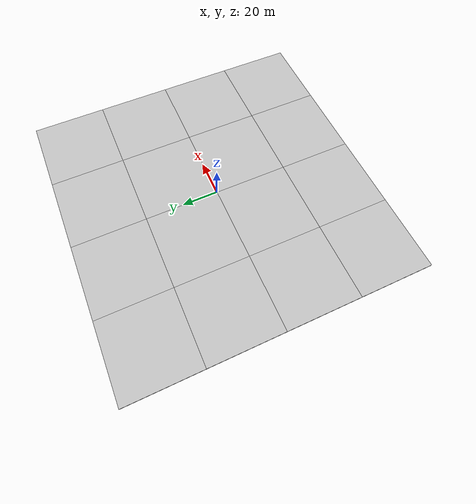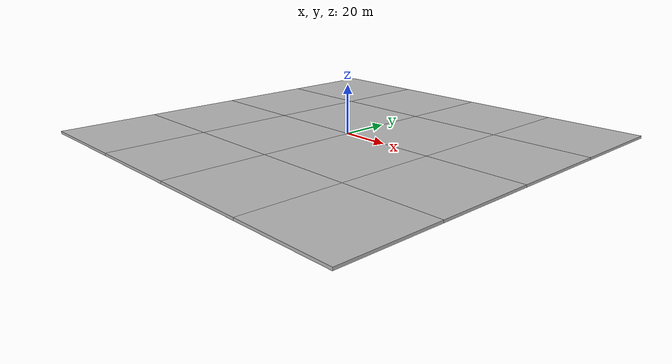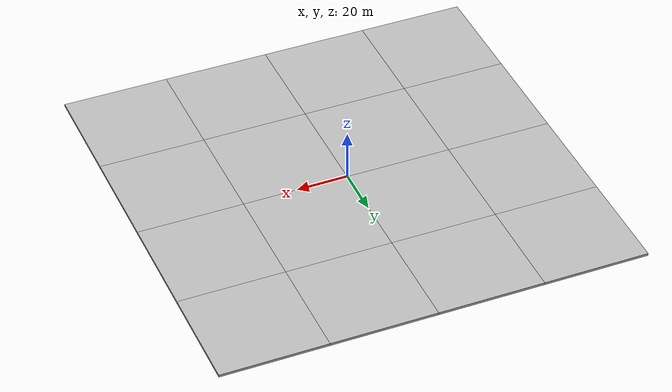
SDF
<sdf version="1.7">
 <world name="default">
  <model name="ground_plane">
   <static>1</static>
   <link name="link">
    <collision name="collision">
     <geometry><plane><normal>0 0 1</normal><size>5000 5000</size></plane></geometry>
     <surface><friction><ode><mu>1</mu><mu2>1</mu2></ode></friction></surface>
    </collision>
   </link>
  </model>
  <model name="map_satellite_29.72055_-95.40016_150_150_0">
   <static>1</static>
   <link name="link">
    <collision name="collision">
     <pose>0 0 -0.5 0 -0 0</pose>
     <geometry><box><size>165.955 165.955 1</size></box></geometry>
    </collision>
    <visual name="visual0_0">
     <pose>-62.2331 62.2331 -0.5 0 -0 1.5708</pose>
     <geometry><box><size>41.4888 41.4888 1</size></box></geometry>
     <material>
      <script>
       <uri>model://map_satellite_29.72055_-95.40016_150_150/materials/scripts</uri>
       <uri>model://map_satellite_29.72055_-95.40016_150_150/materials/textures</uri>
       <name>map_satellite_29.72055_-95.40016_150_150/0_0</name>
      </script>
     </material>
    </visual>
    <visual name="visual0_1">
     <pose>-20.7444 62.2331 -0.5 0 -0 1.5708</pose>
     <geometry><box><size>41.4888 41.4888 1</size></box></geometry>
     <material>
      <script>
       <uri>model://map_satellite_29.72055_-95.40016_150_150/materials/scripts</uri>
       <uri>model://map_satellite_29.72055_-95.40016_150_150/materials/textures</uri>
       <name>map_satellite_29.72055_-95.40016_150_150/0_1</name>
      </script>
     </material>
    </visual>
    <visual name="visual0_2">
     <pose>20.7444 62.2331 -0.5 0 -0 1.5708</pose>
     <geometry><box><size>41.4888 41.4888 1</size></box></geometry>
     <material>
      <script>
       <uri>model://map_satellite_29.72055_-95.40016_150_150/materials/scripts</uri>
       <uri>model://map_satellite_29.72055_-95.40016_150_150/materials/textures</uri>
       <name>map_satellite_29.72055_-95.40016_150_150/0_2</name>
      </script>
     </material>
    </visual>
    <visual name="visual0_3">
     <pose>62.2331 62.2331 -0.5 0 -0 1.5708</pose>
     <geometry><box><size>41.4888 41.4888 1</size></box></geometry>
     <material>
      <script>
       <uri>model://map_satellite_29.72055_-95.40016_150_150/materials/scripts</uri>
       <uri>model://map_satellite_29.72055_-95.40016_150_150/materials/textures</uri>
       <name>map_satellite_29.72055_-95.40016_150_150/0_3</name>
      </script>
     </material>
    </visual>
    <visual name="visual1_0">
     <pose>-62.2331 20.7444 -0.5 0 -0 1.5708</pose>
     <geometry><box><size>41.4888 41.4888 1</size></box></geometry>
     <material>
      <script>
       <uri>model://map_satellite_29.72055_-95.40016_150_150/materials/scripts</uri>
       <uri>model://map_satellite_29.72055_-95.40016_150_150/materials/textures</uri>
       <name>map_satellite_29.72055_-95.40016_150_150/1_0</name>
      </script>
     </material>
    </visual>
    <visual name="visual1_1">
     <pose>-20.7444 20.7444 -0.5 0 -0 1.5708</pose>
     <geometry><box><size>41.4888 41.4888 1</size></box></geometry>
     <material>
      <script>
       <uri>model://map_satellite_29.72055_-95.40016_150_150/materials/scripts</uri>
       <uri>model://map_satellite_29.72055_-95.40016_150_150/materials/textures</uri>
       <name>map_satellite_29.72055_-95.40016_150_150/1_1</name>
      </script>
     </material>
    </visual>
    <visual name="visual1_2">
     <pose>20.7444 20.7444 -0.5 0 -0 1.5708</pose>
     <geometry><box><size>41.4888 41.4888 1</size></box></geometry>
     <material>
      <script>
       <uri>model://map_satellite_29.72055_-95.40016_150_150/materials/scripts</uri>
       <uri>model://map_satellite_29.72055_-95.40016_150_150/materials/textures</uri>
       <name>map_satellite_29.72055_-95.40016_150_150/1_2</name>
      </script>
     </material>
    </visual>
    <visual name="visual1_3">
     <pose>62.2331 20.7444 -0.5 0 -0 1.5708</pose>
     <geometry><box><size>41.4888 41.4888 1</size></box></geometry>
     <material>
      <script>
       <uri>model://map_satellite_29.72055_-95.40016_150_150/materials/scripts</uri>
       <uri>model://map_satellite_29.72055_-95.40016_150_150/materials/textures</uri>
       <name>map_satellite_29.72055_-95.40016_150_150/1_3</name>
      </script>
     </material>
    </visual>
    <visual name="visual2_0">
     <pose>-62.2331 -20.7444 -0.5 0 -0 1.5708</pose>
     <geometry><box><size>41.4888 41.4888 1</size></box></geometry>
     <material>
      <script>
       <uri>model://map_satellite_29.72055_-95.40016_150_150/materials/scripts</uri>
       <uri>model://map_satellite_29.72055_-95.40016_150_150/materials/textures</uri>
       <name>map_satellite_29.72055_-95.40016_150_150/2_0</name>
      </script>
     </material>
    </visual>
    <visual name="visual2_1">
     <pose>-20.7444 -20.7444 -0.5 0 -0 1.5708</pose>
     <geometry><box><size>41.4888 41.4888 1</size></box></geometry>
     <material>
      <script>
       <uri>model://map_satellite_29.72055_-95.40016_150_150/materials/scripts</uri>
       <uri>model://map_satellite_29.72055_-95.40016_150_150/materials/textures</uri>
       <name>map_satellite_29.72055_-95.40016_150_150/2_1</name>
      </script>
     </material>
    </visual>
    <visual name="visual2_2">
     <pose>20.7444 -20.7444 -0.5 0 -0 1.5708</pose>
     <geometry><box><size>41.4888 41.4888 1</size></box></geometry>
     <material>
      <script>
       <uri>model://map_satellite_29.72055_-95.40016_150_150/materials/scripts</uri>
       <uri>model://map_satellite_29.72055_-95.40016_150_150/materials/textures</uri>
       <name>map_satellite_29.72055_-95.40016_150_150/2_2</name>
      </script>
     </material>
    </visual>
    <visual name="visual2_3">
     <pose>62.2331 -20.7444 -0.5 0 -0 1.5708</pose>
     <geometry><box><size>41.4888 41.4888 1</size></box></geometry>
     <material>
      <script>
       <uri>model://map_satellite_29.72055_-95.40016_150_150/materials/scripts</uri>
       <uri>model://map_satellite_29.72055_-95.40016_150_150/materials/textures</uri>
       <name>map_satellite_29.72055_-95.40016_150_150/2_3</name>
      </script>
     </material>
    </visual>
    <visual name="visual3_0">
     <pose>-62.2331 -62.2331 -0.5 0 -0 1.5708</pose>
     <geometry><box><size>41.4888 41.4888 1</size></box></geometry>
     <material>
      <script>
       <uri>model://map_satellite_29.72055_-95.40016_150_150/materials/scripts</uri>
       <uri>model://map_satellite_29.72055_-95.40016_150_150/materials/textures</uri>
       <name>map_satellite_29.72055_-95.40016_150_150/3_0</name>
      </script>
     </material>
    </visual>
    <visual name="visual3_1">
     <pose>-20.7444 -62.2331 -0.5 0 -0 1.5708</pose>
     <geometry><box><size>41.4888 41.4888 1</size></box></geometry>
     <material>
      <script>
       <uri>model://map_satellite_29.72055_-95.40016_150_150/materials/scripts</uri>
       <uri>model://map_satellite_29.72055_-95.40016_150_150/materials/textures</uri>
       <name>map_satellite_29.72055_-95.40016_150_150/3_1</name>
      </script>
     </material>
    </visual>
    <visual name="visual3_2">
     <pose>20.7444 -62.2331 -0.5 0 -0 1.5708</pose>
     <geometry><box><size>41.4888 41.4888 1</size></box></geometry>
     <material>
      <script>
       <uri>model://map_satellite_29.72055_-95.40016_150_150/materials/scripts</uri>
       <uri>model://map_satellite_29.72055_-95.40016_150_150/materials/textures</uri>
       <name>map_satellite_29.72055_-95.40016_150_150/3_2</name>
      </script>
     </material>
    </visual>
    <visual name="visual3_3">
     <pose>62.2331 -62.2331 -0.5 0 -0 1.5708</pose>
     <geometry><box><size>41.4888 41.4888 1</size></box></geometry>
     <material>
      <script>
       <uri>model://map_satellite_29.72055_-95.40016_150_150/materials/scripts</uri>
       <uri>model://map_satellite_29.72055_-95.40016_150_150/materials/textures</uri>
       <name>map_satellite_29.72055_-95.40016_150_150/3_3</name>
      </script>
     </material>
    </visual>
   </link>
  </model>
 </world>
</sdf>
